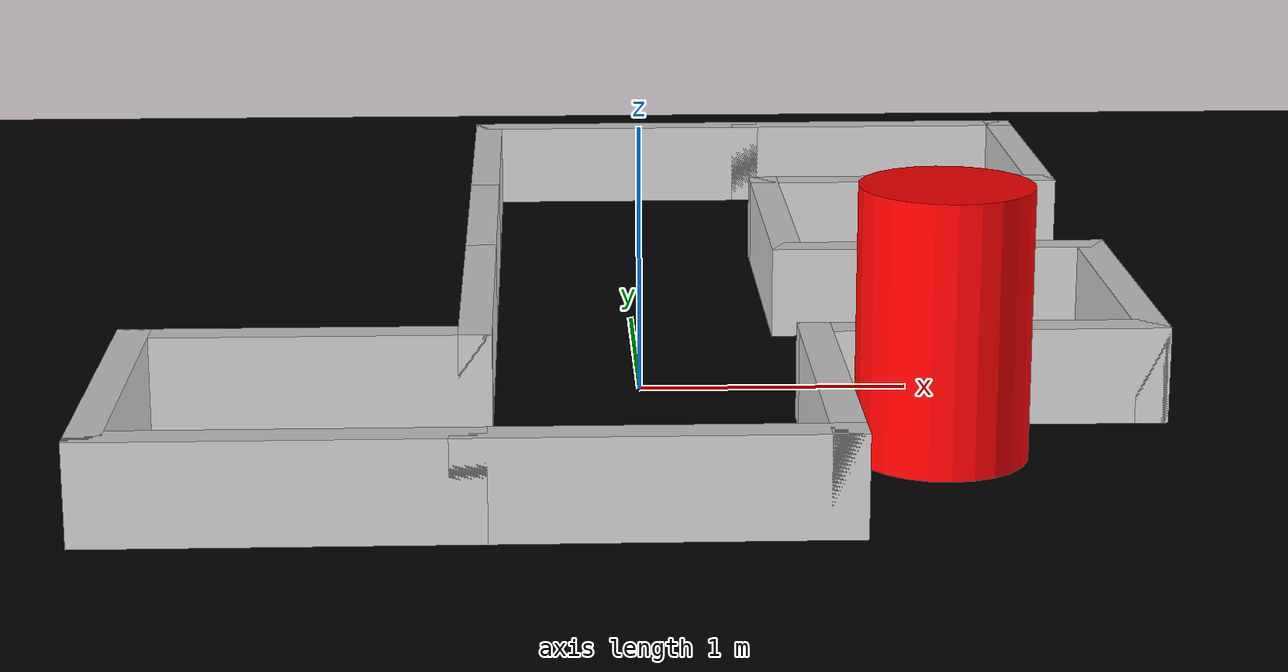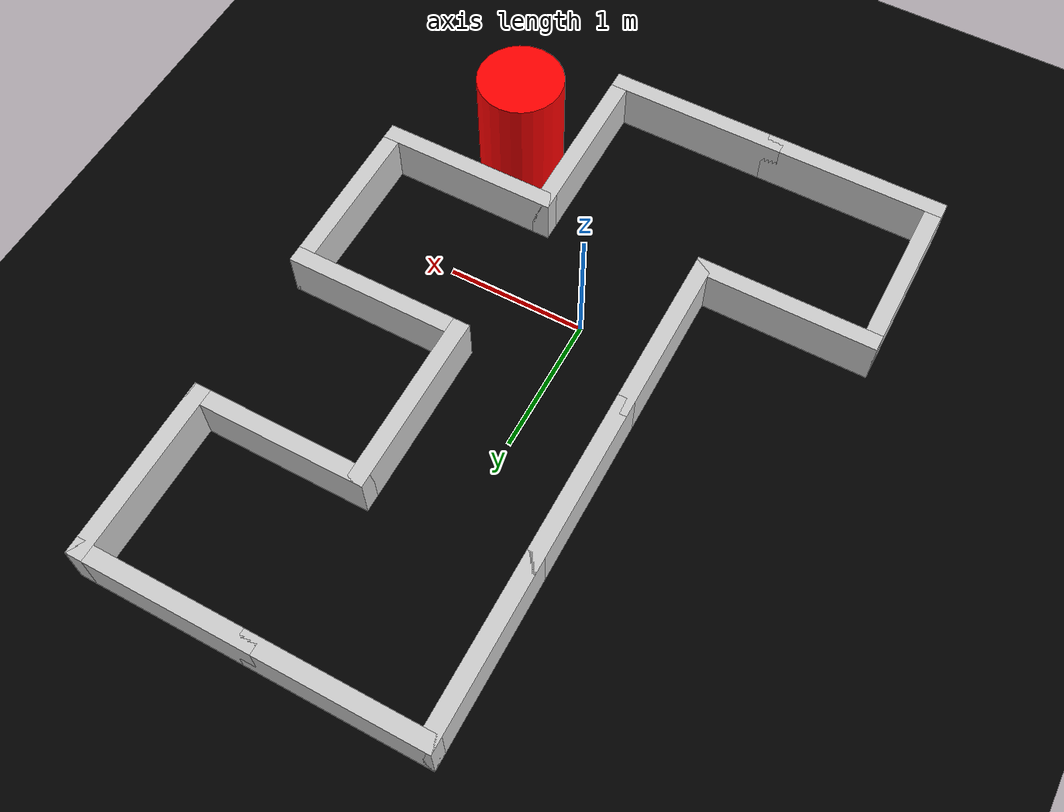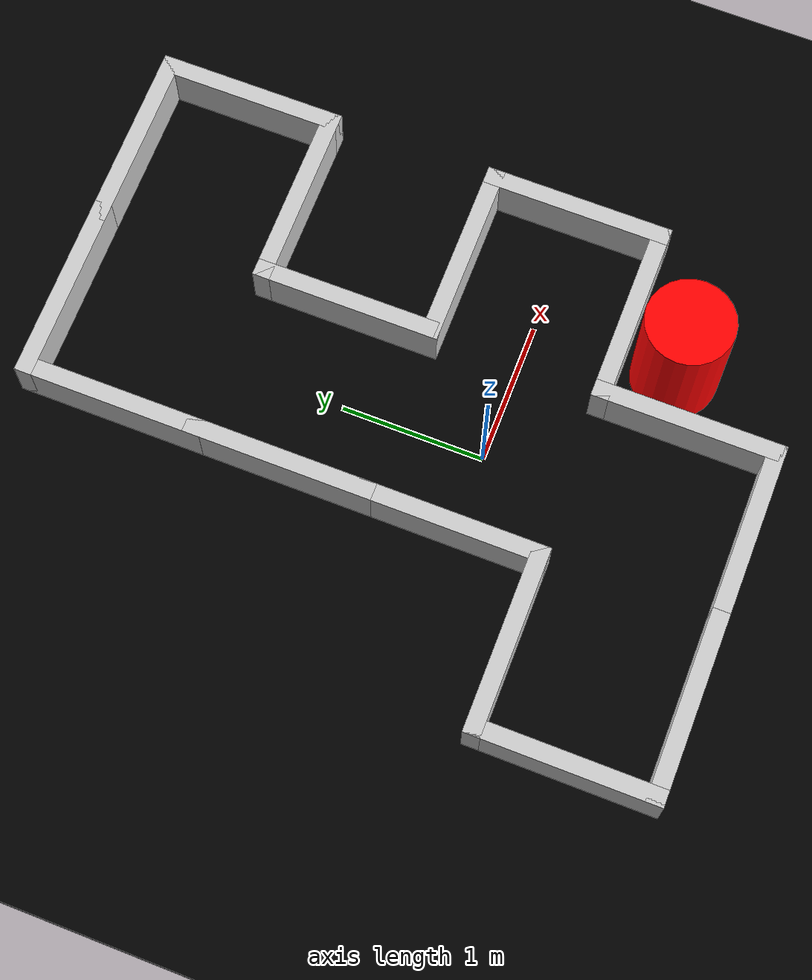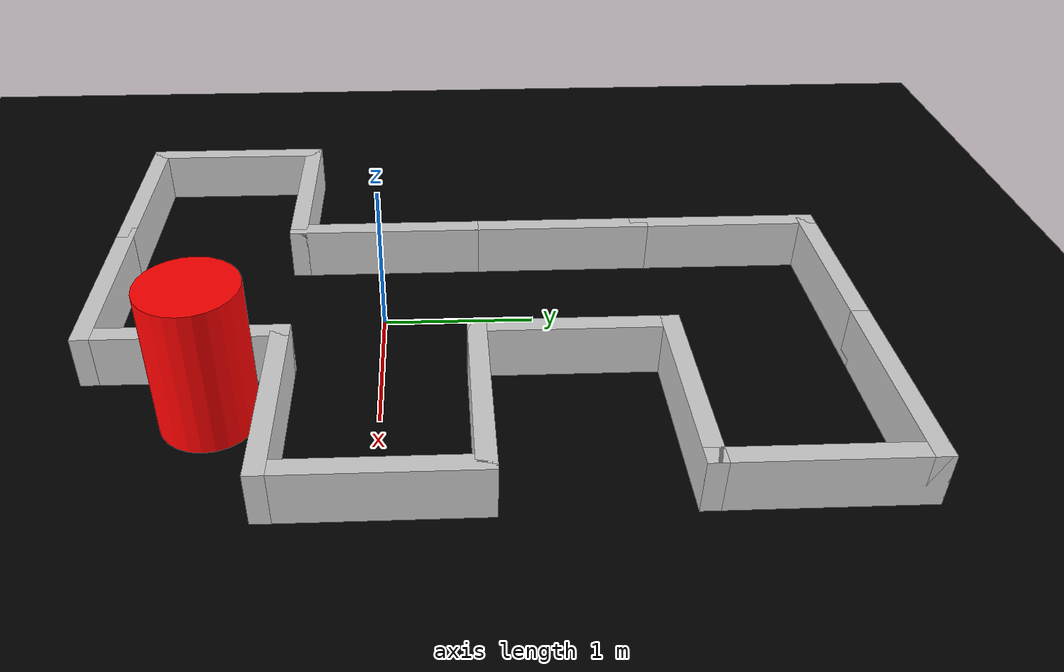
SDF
<?xml version="1.0"?>
<sdf version="1.6">
  <world name="maze_world">

    <!-- Black Floor -->
    <model name="black_floor">
      <static>true</static>
      <pose>0 0 0 0 0 0</pose>
      <link name="link">
        <collision name="collision">
          <geometry>
            <box>
              <size>20 20 0.1</size>
            </box>
          </geometry>
        </collision>
        <visual name="visual">
          <geometry>
            <box>
              <size>20 20 0.1</size>
            </box>
          </geometry>
          <material>
            <ambient>0 0 0 1</ambient>
            <diffuse>0 0 0 1</diffuse>
          </material>
        </visual>
      </link>
    </model>

    <model name="maze_grid">
      <static>true</static>

      <link name="h_1_1">
        <pose>-1.200 -1.800 0.200 0 0 0.000000</pose>
        <collision name="c">
          <geometry><box><size>1.320 0.120 0.400</size></box></geometry>
        </collision>
        <visual name="v">
          <geometry><box><size>1.320 0.120 0.400</size></box></geometry>
          <material>
            <ambient>0.6 0.6 0.6 1</ambient>
            <diffuse>0.8 0.8 0.8 1</diffuse>
          </material>
        </visual>
      </link>
      <link name="h_1_2">
        <pose>0.000 -1.800 0.200 0 0 0.000000</pose>
        <collision name="c">
          <geometry><box><size>1.320 0.120 0.400</size></box></geometry>
        </collision>
        <visual name="v">
          <geometry><box><size>1.320 0.120 0.400</size></box></geometry>
          <material>
            <ambient>0.6 0.6 0.6 1</ambient>
            <diffuse>0.8 0.8 0.8 1</diffuse>
          </material>
        </visual>
      </link>
      <link name="h_2_1">
        <pose>-1.200 -0.600 0.200 0 0 0.000000</pose>
        <collision name="c">
          <geometry><box><size>1.320 0.120 0.400</size></box></geometry>
        </collision>
        <visual name="v">
          <geometry><box><size>1.320 0.120 0.400</size></box></geometry>
          <material>
            <ambient>0.6 0.6 0.6 1</ambient>
            <diffuse>0.8 0.8 0.8 1</diffuse>
          </material>
        </visual>
      </link>
      <link name="h_2_3">
        <pose>1.200 -0.600 0.200 0 0 0.000000</pose>
        <collision name="c">
          <geometry><box><size>1.320 0.120 0.400</size></box></geometry>
        </collision>
        <visual name="v">
          <geometry><box><size>1.320 0.120 0.400</size></box></geometry>
          <material>
            <ambient>0.6 0.6 0.6 1</ambient>
            <diffuse>0.8 0.8 0.8 1</diffuse>
          </material>
        </visual>
      </link>
      <link name="h_3_3">
        <pose>1.200 0.600 0.200 0 0 0.000000</pose>
        <collision name="c">
          <geometry><box><size>1.320 0.120 0.400</size></box></geometry>
        </collision>
        <visual name="v">
          <geometry><box><size>1.320 0.120 0.400</size></box></geometry>
          <material>
            <ambient>0.6 0.6 0.6 1</ambient>
            <diffuse>0.8 0.8 0.8 1</diffuse>
          </material>
        </visual>
      </link>
      <link name="h_4_3">
        <pose>1.200 1.800 0.200 0 0 0.000000</pose>
        <collision name="c">
          <geometry><box><size>1.320 0.120 0.400</size></box></geometry>
        </collision>
        <visual name="v">
          <geometry><box><size>1.320 0.120 0.400</size></box></geometry>
          <material>
            <ambient>0.6 0.6 0.6 1</ambient>
            <diffuse>0.8 0.8 0.8 1</diffuse>
          </material>
        </visual>
      </link>
      <link name="h_5_2">
        <pose>0.000 3.000 0.200 0 0 0.000000</pose>
        <collision name="c">
          <geometry><box><size>1.320 0.120 0.400</size></box></geometry>
        </collision>
        <visual name="v">
          <geometry><box><size>1.320 0.120 0.400</size></box></geometry>
          <material>
            <ambient>0.6 0.6 0.6 1</ambient>
            <diffuse>0.8 0.8 0.8 1</diffuse>
          </material>
        </visual>
      </link>
      <link name="h_5_3">
        <pose>1.200 3.000 0.200 0 0 0.000000</pose>
        <collision name="c">
          <geometry><box><size>1.320 0.120 0.400</size></box></geometry>
        </collision>
        <visual name="v">
          <geometry><box><size>1.320 0.120 0.400</size></box></geometry>
          <material>
            <ambient>0.6 0.6 0.6 1</ambient>
            <diffuse>0.8 0.8 0.8 1</diffuse>
          </material>
        </visual>
      </link>
      <link name="v_1_1">
        <pose>-1.800 -1.200 0.200 0 0 1.570796</pose>
        <collision name="c">
          <geometry><box><size>1.320 0.120 0.400</size></box></geometry>
        </collision>
        <visual name="v">
          <geometry><box><size>1.320 0.120 0.400</size></box></geometry>
          <material>
            <ambient>0.6 0.6 0.6 1</ambient>
            <diffuse>0.8 0.8 0.8 1</diffuse>
          </material>
        </visual>
      </link>
      <link name="v_2_2">
        <pose>-0.600 0.000 0.200 0 0 1.570796</pose>
        <collision name="c">
          <geometry><box><size>1.320 0.120 0.400</size></box></geometry>
        </collision>
        <visual name="v">
          <geometry><box><size>1.320 0.120 0.400</size></box></geometry>
          <material>
            <ambient>0.6 0.6 0.6 1</ambient>
            <diffuse>0.8 0.8 0.8 1</diffuse>
          </material>
        </visual>
      </link>
      <link name="v_2_3">
        <pose>-0.600 1.200 0.200 0 0 1.570796</pose>
        <collision name="c">
          <geometry><box><size>1.320 0.120 0.400</size></box></geometry>
        </collision>
        <visual name="v">
          <geometry><box><size>1.320 0.120 0.400</size></box></geometry>
          <material>
            <ambient>0.6 0.6 0.6 1</ambient>
            <diffuse>0.8 0.8 0.8 1</diffuse>
          </material>
        </visual>
      </link>
      <link name="v_2_4">
        <pose>-0.600 2.400 0.200 0 0 1.570796</pose>
        <collision name="c">
          <geometry><box><size>1.320 0.120 0.400</size></box></geometry>
        </collision>
        <visual name="v">
          <geometry><box><size>1.320 0.120 0.400</size></box></geometry>
          <material>
            <ambient>0.6 0.6 0.6 1</ambient>
            <diffuse>0.8 0.8 0.8 1</diffuse>
          </material>
        </visual>
      </link>
      <link name="v_3_1">
        <pose>0.600 -1.200 0.200 0 0 1.570796</pose>
        <collision name="c">
          <geometry><box><size>1.320 0.120 0.400</size></box></geometry>
        </collision>
        <visual name="v">
          <geometry><box><size>1.320 0.120 0.400</size></box></geometry>
          <material>
            <ambient>0.6 0.6 0.6 1</ambient>
            <diffuse>0.8 0.8 0.8 1</diffuse>
          </material>
        </visual>
      </link>
      <link name="v_3_3">
        <pose>0.600 1.200 0.200 0 0 1.570796</pose>
        <collision name="c">
          <geometry><box><size>1.320 0.120 0.400</size></box></geometry>
        </collision>
        <visual name="v">
          <geometry><box><size>1.320 0.120 0.400</size></box></geometry>
          <material>
            <ambient>0.6 0.6 0.6 1</ambient>
            <diffuse>0.8 0.8 0.8 1</diffuse>
          </material>
        </visual>
      </link>
      <link name="v_4_2">
        <pose>1.800 0.000 0.200 0 0 1.570796</pose>
        <collision name="c">
          <geometry><box><size>1.320 0.120 0.400</size></box></geometry>
        </collision>
        <visual name="v">
          <geometry><box><size>1.320 0.120 0.400</size></box></geometry>
          <material>
            <ambient>0.6 0.6 0.6 1</ambient>
            <diffuse>0.8 0.8 0.8 1</diffuse>
          </material>
        </visual>
      </link>
      <link name="v_4_4">
        <pose>1.800 2.400 0.200 0 0 1.570796</pose>
        <collision name="c">
          <geometry><box><size>1.320 0.120 0.400</size></box></geometry>
        </collision>
        <visual name="v">
          <geometry><box><size>1.320 0.120 0.400</size></box></geometry>
          <material>
            <ambient>0.6 0.6 0.6 1</ambient>
            <diffuse>0.8 0.8 0.8 1</diffuse>
          </material>
        </visual>
      </link>
    </model>

    <!-- Goal (Red Cylinder) -->
    <model name="goal">
      <static>true</static>
      <pose>1 -1 0.5 0 0 0</pose>
      <link name="link">
        <collision name="collision">
          <geometry>
            <cylinder>
              <radius>0.3</radius>
              <length>1</length>
            </cylinder>
          </geometry>
        </collision>
        <visual name="visual">
          <geometry>
            <cylinder>
              <radius>0.3</radius>
              <length>1</length>
            </cylinder>
          </geometry>
          <material>
            <ambient>1 0 0 1</ambient>
            <diffuse>1 0 0 1</diffuse>
          </material>
        </visual>
      </link>
    </model>

    <!-- Required Gazebo Plugins -->
    <plugin filename="gz-sim-physics-system" name="gz::sim::systems::Physics"/>
    <plugin filename="gz-sim-user-commands-system" name="gz::sim::systems::UserCommands"/>
    <plugin filename="gz-sim-scene-broadcaster-system" name="gz::sim::systems::SceneBroadcaster"/>
    <plugin filename="gz-sim-sensors-system" name="gz::sim::systems::Sensors">
      <render_engine>ogre2</render_engine>
    </plugin>
    <plugin filename="gz-sim-imu-system" name="gz::sim::systems::Imu"/>

    <!-- Lighting and ground -->
    <include>
      <uri>https://fuel.gazebosim.org/1.0/OpenRobotics/models/Sun</uri>
    </include>

    <scene>
      <shadows>false</shadows>
    </scene>

  </world>
</sdf>
